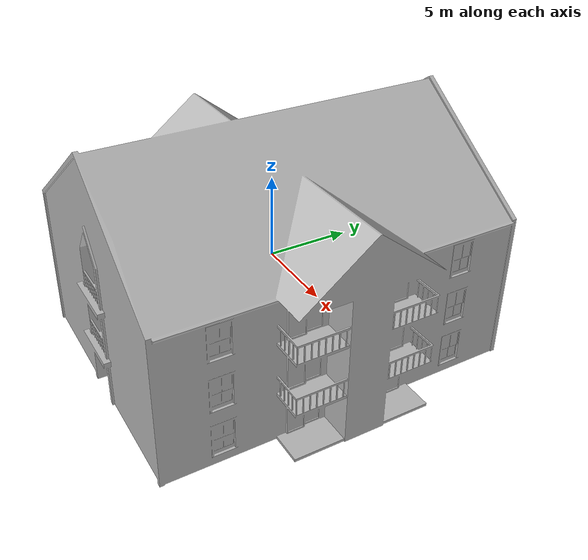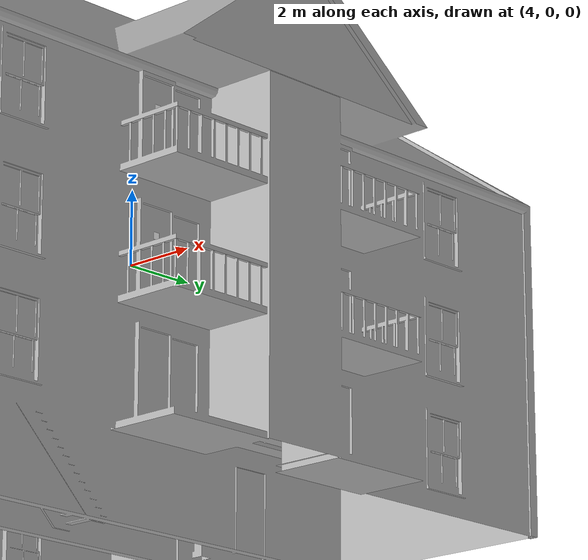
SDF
<?xml version='1.0'?>
<sdf version='1.6'>
  <model name='Apartment_with_arUco_Markers'>
    <model name='apartment'>
      <static>1</static>
      <link name='link'>
        <collision name='collision'>
          <geometry>
            <mesh>
              <uri>model://apartment/meshes/apartment.dae</uri>
            </mesh>
          </geometry>
        </collision>
        <visual name='visual'>
          <geometry>
            <mesh>
              <uri>model://apartment/meshes/apartment.dae</uri>
            </mesh>
          </geometry>
        </visual>
      </link>
      <pose frame=''>-0.000161 0.004856 -5.76608 0 -0 0</pose>
    </model>
    <model name='aruco_visual_marker_1'>
      <link name='marker'>
        <pose frame=''>0 0 0 0 -0 0</pose>
        <visual name='visual'>
          <geometry>
            <box>
              <size>0.1778 0.1778 1e-05</size>
            </box>
          </geometry>
          <material>
            <script>
              <uri>model://aruco_visual_marker_1/materials/scripts</uri>
              <uri>model://aruco_visual_marker_1/materials/textures</uri>
              <name>ArucoVisualMarker1/Marker</name>
            </script>
            <ambient>1 1 1 1</ambient>
            <diffuse>1 1 1 1</diffuse>
            <specular>0 0 0 1</specular>
            <emissive>1 1 1 0</emissive>
            <shader type='vertex'>
              <normal_map>__default__</normal_map>
            </shader>
          </material>
          <pose frame=''>0 0 0 0 -0 0</pose>
          <cast_shadows>1</cast_shadows>
          <transparency>0</transparency>
        </visual>
        <collision name='collision'>
          <laser_retro>0</laser_retro>
          <max_contacts>10</max_contacts>
          <pose frame=''>0 0 0 0 -0 0</pose>
          <geometry>
            <box>
              <size>0.1778 0.1778 1e-05</size>
            </box>
          </geometry>
        </collision>
      </link>
      <link name='marker_pad'>
        <pose frame='marker'>0 0 -1e-05 0 -0 0</pose>
        <visual name='visual'>
          <geometry>
            <box>
              <size>0.1778 0.1778 1e-05</size>
            </box>
          </geometry>
          <material>
            <lighting>1</lighting>
            <script>
              <uri>file://media/materials/scripts/gazebo.material</uri>
              <name>Gazebo/White</name>
            </script>
            <ambient>0.3 0.3 0.3 1</ambient>
            <diffuse>0.7 0.7 0.7 1</diffuse>
            <specular>0.01 0.01 0.01 1</specular>
            <emissive>1 1 1 0</emissive>
            <shader type='vertex'>
              <normal_map>__default__</normal_map>
            </shader>
          </material>
          <cast_shadows>1</cast_shadows>
          <transparency>0</transparency>
        </visual>
        <collision name='collision'>
          <laser_retro>0</laser_retro>
          <max_contacts>10</max_contacts>
          <pose frame=''>0 0 0 0 -0 0</pose>
          <geometry>
            <box>
              <size>0.1778 0.1778 1e-05</size>
            </box>
          </geometry>
        </collision>
      </link>
      <joint name='marker_JOINT_marker_pad' type='revolute'>
        <parent>marker</parent>
        <child>marker_pad</child>
        <pose frame=''>0 0 0 0 -0 0</pose>
        <axis>
          <xyz>0 0 1</xyz>
          <limit>
            <upper>0</upper>
            <lower>0</lower>
          </limit>
          <use_parent_model_frame>0</use_parent_model_frame>
        </axis>
      </joint>
      <static>1</static>
      <allow_auto_disable>1</allow_auto_disable>
      <pose frame=''>8.07857 -3.07571 -0.91059 2.69932 -1.56674 0.442279</pose>
    </model>
    <model name='aruco_visual_marker_2'>
      <link name='marker'>
        <pose frame=''>0 0 0 0 -0 0</pose>
        <visual name='visual'>
          <geometry>
            <box>
              <size>0.1778 0.1778 1e-05</size>
            </box>
          </geometry>
          <material>
            <script>
              <uri>model://aruco_visual_marker_2/materials/scripts</uri>
              <uri>model://aruco_visual_marker_2/materials/textures</uri>
              <name>ArucoVisualMarker2/Marker</name>
            </script>
            <ambient>1 1 1 1</ambient>
            <diffuse>1 1 1 1</diffuse>
            <specular>0 0 0 1</specular>
            <emissive>1 1 1 0</emissive>
            <shader type='vertex'>
              <normal_map>__default__</normal_map>
            </shader>
          </material>
          <pose frame=''>0 0 0 0 -0 0</pose>
          <cast_shadows>1</cast_shadows>
          <transparency>0</transparency>
        </visual>
        <collision name='collision'>
          <laser_retro>0</laser_retro>
          <max_contacts>10</max_contacts>
          <pose frame=''>0 0 0 0 -0 0</pose>
          <geometry>
            <box>
              <size>0.1778 0.1778 1e-05</size>
            </box>
          </geometry>
        </collision>
      </link>
      <link name='marker_pad'>
        <pose frame='marker'>0 0 -1e-05 0 -0 0</pose>
        <visual name='visual'>
          <geometry>
            <box>
              <size>0.1778 0.1778 1e-05</size>
            </box>
          </geometry>
          <material>
            <lighting>1</lighting>
            <script>
              <uri>file://media/materials/scripts/gazebo.material</uri>
              <name>Gazebo/White</name>
            </script>
            <ambient>0.3 0.3 0.3 1</ambient>
            <diffuse>0.7 0.7 0.7 1</diffuse>
            <specular>0.01 0.01 0.01 1</specular>
            <emissive>1 1 1 0</emissive>
            <shader type='vertex'>
              <normal_map>__default__</normal_map>
            </shader>
          </material>
          <cast_shadows>1</cast_shadows>
          <transparency>0</transparency>
        </visual>
        <collision name='collision'>
          <laser_retro>0</laser_retro>
          <max_contacts>10</max_contacts>
          <pose frame=''>0 0 0 0 -0 0</pose>
          <geometry>
            <box>
              <size>0.1778 0.1778 1e-05</size>
            </box>
          </geometry>
        </collision>
      </link>
      <joint name='marker_JOINT_marker_pad' type='revolute'>
        <parent>marker</parent>
        <child>marker_pad</child>
        <pose frame=''>0 0 0 0 -0 0</pose>
        <axis>
          <xyz>0 0 1</xyz>
          <limit>
            <upper>0</upper>
            <lower>0</lower>
          </limit>
          <use_parent_model_frame>0</use_parent_model_frame>
        </axis>
      </joint>
      <static>1</static>
      <allow_auto_disable>1</allow_auto_disable>
      <pose frame=''>-8.07695 3.097 -0.81146 3.14159 -1.56671 3.14159</pose>
    </model>
    <model name='aruco_visual_marker_3'>
      <link name='marker'>
        <pose frame=''>0 0 0 0 -0 0</pose>
        <visual name='visual'>
          <geometry>
            <box>
              <size>0.1778 0.1778 1e-05</size>
            </box>
          </geometry>
          <material>
            <script>
              <uri>model://aruco_visual_marker_3/materials/scripts</uri>
              <uri>model://aruco_visual_marker_3/materials/textures</uri>
              <name>ArucoVisualMarker3/Marker</name>
            </script>
            <ambient>1 1 1 1</ambient>
            <diffuse>1 1 1 1</diffuse>
            <specular>0 0 0 1</specular>
            <emissive>1 1 1 0</emissive>
            <shader type='vertex'>
              <normal_map>__default__</normal_map>
            </shader>
          </material>
          <pose frame=''>0 0 0 0 -0 0</pose>
          <cast_shadows>1</cast_shadows>
          <transparency>0</transparency>
        </visual>
        <collision name='collision'>
          <laser_retro>0</laser_retro>
          <max_contacts>10</max_contacts>
          <pose frame=''>0 0 0 0 -0 0</pose>
          <geometry>
            <box>
              <size>0.1778 0.1778 1e-05</size>
            </box>
          </geometry>
        </collision>
      </link>
      <link name='marker_pad'>
        <pose frame='marker'>0 0 -1e-05 0 -0 0</pose>
        <visual name='visual'>
          <geometry>
            <box>
              <size>0.1778 0.1778 1e-05</size>
            </box>
          </geometry>
          <material>
            <lighting>1</lighting>
            <script>
              <uri>file://media/materials/scripts/gazebo.material</uri>
              <name>Gazebo/White</name>
            </script>
            <ambient>0.3 0.3 0.3 1</ambient>
            <diffuse>0.7 0.7 0.7 1</diffuse>
            <specular>0.01 0.01 0.01 1</specular>
            <emissive>1 1 1 0</emissive>
            <shader type='vertex'>
              <normal_map>__default__</normal_map>
            </shader>
          </material>
          <cast_shadows>1</cast_shadows>
          <transparency>0</transparency>
        </visual>
        <collision name='collision'>
          <laser_retro>0</laser_retro>
          <max_contacts>10</max_contacts>
          <pose frame=''>0 0 0 0 -0 0</pose>
          <geometry>
            <box>
              <size>0.1778 0.1778 1e-05</size>
            </box>
          </geometry>
        </collision>
      </link>
      <joint name='marker_JOINT_marker_pad' type='revolute'>
        <parent>marker</parent>
        <child>marker_pad</child>
        <pose frame=''>0 0 0 0 -0 0</pose>
        <axis>
          <xyz>0 0 1</xyz>
          <limit>
            <upper>0</upper>
            <lower>0</lower>
          </limit>
          <use_parent_model_frame>0</use_parent_model_frame>
        </axis>
      </joint>
      <static>1</static>
      <allow_auto_disable>1</allow_auto_disable>
      <pose frame=''>8.07436 3.07706 -0.90925 -2.51482 -1.56668 -0.626778</pose>
    </model>
    <model name='aruco_visual_marker_4'>
      <link name='marker'>
        <pose frame=''>0 0 0 0 -0 0</pose>
        <visual name='visual'>
          <geometry>
            <box>
              <size>0.1778 0.1778 1e-05</size>
            </box>
          </geometry>
          <material>
            <script>
              <uri>model://aruco_visual_marker_4/materials/scripts</uri>
              <uri>model://aruco_visual_marker_4/materials/textures</uri>
              <name>ArucoVisualMarker4/Marker</name>
            </script>
            <ambient>1 1 1 1</ambient>
            <diffuse>1 1 1 1</diffuse>
            <specular>0 0 0 1</specular>
            <emissive>1 1 1 0</emissive>
            <shader type='vertex'>
              <normal_map>__default__</normal_map>
            </shader>
          </material>
          <pose frame=''>0 0 0 0 -0 0</pose>
          <cast_shadows>1</cast_shadows>
          <transparency>0</transparency>
        </visual>
        <collision name='collision'>
          <laser_retro>0</laser_retro>
          <max_contacts>10</max_contacts>
          <pose frame=''>0 0 0 0 -0 0</pose>
          <geometry>
            <box>
              <size>0.1778 0.1778 1e-05</size>
            </box>
          </geometry>
        </collision>
      </link>
      <link name='marker_pad'>
        <pose frame='marker'>0 0 -1e-05 0 -0 0</pose>
        <visual name='visual'>
          <geometry>
            <box>
              <size>0.1778 0.1778 1e-05</size>
            </box>
          </geometry>
          <material>
            <lighting>1</lighting>
            <script>
              <uri>file://media/materials/scripts/gazebo.material</uri>
              <name>Gazebo/White</name>
            </script>
            <ambient>0.3 0.3 0.3 1</ambient>
            <diffuse>0.7 0.7 0.7 1</diffuse>
            <specular>0.01 0.01 0.01 1</specular>
            <emissive>1 1 1 0</emissive>
            <shader type='vertex'>
              <normal_map>__default__</normal_map>
            </shader>
          </material>
          <cast_shadows>1</cast_shadows>
          <transparency>0</transparency>
        </visual>
        <collision name='collision'>
          <laser_retro>0</laser_retro>
          <max_contacts>10</max_contacts>
          <pose frame=''>0 0 0 0 -0 0</pose>
          <geometry>
            <box>
              <size>0.1778 0.1778 1e-05</size>
            </box>
          </geometry>
        </collision>
      </link>
      <joint name='marker_JOINT_marker_pad' type='revolute'>
        <parent>marker</parent>
        <child>marker_pad</child>
        <pose frame=''>0 0 0 0 -0 0</pose>
        <axis>
          <xyz>0 0 1</xyz>
          <limit>
            <upper>0</upper>
            <lower>0</lower>
          </limit>
          <use_parent_model_frame>0</use_parent_model_frame>
        </axis>
      </joint>
      <static>1</static>
      <allow_auto_disable>1</allow_auto_disable>
      <pose frame=''>-8.07466 -3.09746 -0.8294 3.2e-05 -1.56758 -3.8e-05</pose>
    </model>
    <model name='aruco_visual_marker_5'>
      <link name='marker'>
        <pose frame=''>0 0 0 0 -0 0</pose>
        <visual name='visual'>
          <geometry>
            <box>
              <size>0.1778 0.1778 1e-05</size>
            </box>
          </geometry>
          <material>
            <script>
              <uri>model://aruco_visual_marker_5/materials/scripts</uri>
              <uri>model://aruco_visual_marker_5/materials/textures</uri>
              <name>ArucoVisualMarker5/Marker</name>
            </script>
            <ambient>1 1 1 1</ambient>
            <diffuse>1 1 1 1</diffuse>
            <specular>0 0 0 1</specular>
            <emissive>1 1 1 0</emissive>
            <shader type='vertex'>
              <normal_map>__default__</normal_map>
            </shader>
          </material>
          <pose frame=''>0 0 0 0 -0 0</pose>
          <cast_shadows>1</cast_shadows>
          <transparency>0</transparency>
        </visual>
        <collision name='collision'>
          <laser_retro>0</laser_retro>
          <max_contacts>10</max_contacts>
          <pose frame=''>0 0 0 0 -0 0</pose>
          <geometry>
            <box>
              <size>0.1778 0.1778 1e-05</size>
            </box>
          </geometry>
        </collision>
      </link>
      <link name='marker_pad'>
        <pose frame='marker'>0 0 -1e-05 0 -0 0</pose>
        <visual name='visual'>
          <geometry>
            <box>
              <size>0.1778 0.1778 1e-05</size>
            </box>
          </geometry>
          <material>
            <lighting>1</lighting>
            <script>
              <uri>file://media/materials/scripts/gazebo.material</uri>
              <name>Gazebo/White</name>
            </script>
            <ambient>0.3 0.3 0.3 1</ambient>
            <diffuse>0.7 0.7 0.7 1</diffuse>
            <specular>0.01 0.01 0.01 1</specular>
            <emissive>1 1 1 0</emissive>
            <shader type='vertex'>
              <normal_map>__default__</normal_map>
            </shader>
          </material>
          <cast_shadows>1</cast_shadows>
          <transparency>0</transparency>
        </visual>
        <collision name='collision'>
          <laser_retro>0</laser_retro>
          <max_contacts>10</max_contacts>
          <pose frame=''>0 0 0 0 -0 0</pose>
          <geometry>
            <box>
              <size>0.1778 0.1778 1e-05</size>
            </box>
          </geometry>
        </collision>
      </link>
      <joint name='marker_JOINT_marker_pad' type='revolute'>
        <parent>marker</parent>
        <child>marker_pad</child>
        <pose frame=''>0 0 0 0 -0 0</pose>
        <axis>
          <xyz>0 0 1</xyz>
          <limit>
            <upper>0</upper>
            <lower>0</lower>
          </limit>
          <use_parent_model_frame>0</use_parent_model_frame>
        </axis>
      </joint>
      <static>1</static>
      <allow_auto_disable>1</allow_auto_disable>
      <pose frame=''>8.07509 -3.07904 2.26458 -2.96285 -1.56804 -0.178741</pose>
    </model>
    <model name='aruco_visual_marker_6'>
      <link name='marker'>
        <pose frame=''>0 0 0 0 -0 0</pose>
        <visual name='visual'>
          <geometry>
            <box>
              <size>0.1778 0.1778 1e-05</size>
            </box>
          </geometry>
          <material>
            <script>
              <uri>model://aruco_visual_marker_6/materials/scripts</uri>
              <uri>model://aruco_visual_marker_6/materials/textures</uri>
              <name>ArucoVisualMarker6/Marker</name>
            </script>
            <ambient>1 1 1 1</ambient>
            <diffuse>1 1 1 1</diffuse>
            <specular>0 0 0 1</specular>
            <emissive>1 1 1 0</emissive>
            <shader type='vertex'>
              <normal_map>__default__</normal_map>
            </shader>
          </material>
          <pose frame=''>0 0 0 0 -0 0</pose>
          <cast_shadows>1</cast_shadows>
          <transparency>0</transparency>
        </visual>
        <collision name='collision'>
          <laser_retro>0</laser_retro>
          <max_contacts>10</max_contacts>
          <pose frame=''>0 0 0 0 -0 0</pose>
          <geometry>
            <box>
              <size>0.1778 0.1778 1e-05</size>
            </box>
          </geometry>
        </collision>
      </link>
      <link name='marker_pad'>
        <pose frame='marker'>0 0 -1e-05 0 -0 0</pose>
        <visual name='visual'>
          <geometry>
            <box>
              <size>0.1778 0.1778 1e-05</size>
            </box>
          </geometry>
          <material>
            <lighting>1</lighting>
            <script>
              <uri>file://media/materials/scripts/gazebo.material</uri>
              <name>Gazebo/White</name>
            </script>
            <ambient>0.3 0.3 0.3 1</ambient>
            <diffuse>0.7 0.7 0.7 1</diffuse>
            <specular>0.01 0.01 0.01 1</specular>
            <emissive>1 1 1 0</emissive>
            <shader type='vertex'>
              <normal_map>__default__</normal_map>
            </shader>
          </material>
          <cast_shadows>1</cast_shadows>
          <transparency>0</transparency>
        </visual>
        <collision name='collision'>
          <laser_retro>0</laser_retro>
          <max_contacts>10</max_contacts>
          <pose frame=''>0 0 0 0 -0 0</pose>
          <geometry>
            <box>
              <size>0.1778 0.1778 1e-05</size>
            </box>
          </geometry>
        </collision>
      </link>
      <joint name='marker_JOINT_marker_pad' type='revolute'>
        <parent>marker</parent>
        <child>marker_pad</child>
        <pose frame=''>0 0 0 0 -0 0</pose>
        <axis>
          <xyz>0 0 1</xyz>
          <limit>
            <upper>0</upper>
            <lower>0</lower>
          </limit>
          <use_parent_model_frame>0</use_parent_model_frame>
        </axis>
      </joint>
      <static>1</static>
      <allow_auto_disable>1</allow_auto_disable>
      <pose frame=''>-8.0754 3.10027 2.33907 0 -1.56651 0</pose>
    </model>
    <model name='aruco_visual_marker_7'>
      <link name='marker'>
        <pose frame=''>0 0 0 0 -0 0</pose>
        <visual name='visual'>
          <geometry>
            <box>
              <size>0.1778 0.1778 1e-05</size>
            </box>
          </geometry>
          <material>
            <script>
              <uri>model://aruco_visual_marker_7/materials/scripts</uri>
              <uri>model://aruco_visual_marker_7/materials/textures</uri>
              <name>ArucoVisualMarker7/Marker</name>
            </script>
            <ambient>1 1 1 1</ambient>
            <diffuse>1 1 1 1</diffuse>
            <specular>0 0 0 1</specular>
            <emissive>1 1 1 0</emissive>
            <shader type='vertex'>
              <normal_map>__default__</normal_map>
            </shader>
          </material>
          <pose frame=''>0 0 0 0 -0 0</pose>
          <cast_shadows>1</cast_shadows>
          <transparency>0</transparency>
        </visual>
        <collision name='collision'>
          <laser_retro>0</laser_retro>
          <max_contacts>10</max_contacts>
          <pose frame=''>0 0 0 0 -0 0</pose>
          <geometry>
            <box>
              <size>0.1778 0.1778 1e-05</size>
            </box>
          </geometry>
        </collision>
      </link>
      <link name='marker_pad'>
        <pose frame='marker'>0 0 -1e-05 0 -0 0</pose>
        <visual name='visual'>
          <geometry>
            <box>
              <size>0.1778 0.1778 1e-05</size>
            </box>
          </geometry>
          <material>
            <lighting>1</lighting>
            <script>
              <uri>file://media/materials/scripts/gazebo.material</uri>
              <name>Gazebo/White</name>
            </script>
            <ambient>0.3 0.3 0.3 1</ambient>
            <diffuse>0.7 0.7 0.7 1</diffuse>
            <specular>0.01 0.01 0.01 1</specular>
            <emissive>1 1 1 0</emissive>
            <shader type='vertex'>
              <normal_map>__default__</normal_map>
            </shader>
          </material>
          <cast_shadows>1</cast_shadows>
          <transparency>0</transparency>
        </visual>
        <collision name='collision'>
          <laser_retro>0</laser_retro>
          <max_contacts>10</max_contacts>
          <pose frame=''>0 0 0 0 -0 0</pose>
          <geometry>
            <box>
              <size>0.1778 0.1778 1e-05</size>
            </box>
          </geometry>
        </collision>
      </link>
      <joint name='marker_JOINT_marker_pad' type='revolute'>
        <parent>marker</parent>
        <child>marker_pad</child>
        <pose frame=''>0 0 0 0 -0 0</pose>
        <axis>
          <xyz>0 0 1</xyz>
          <limit>
            <upper>0</upper>
            <lower>0</lower>
          </limit>
          <use_parent_model_frame>0</use_parent_model_frame>
        </axis>
      </joint>
      <static>1</static>
      <allow_auto_disable>1</allow_auto_disable>
      <pose frame=''>8.0761 3.075 2.2534 0.43981 -1.56781 2.70179</pose>
    </model>
    <model name='aruco_visual_marker_8'>
      <link name='marker'>
        <pose frame=''>0 0 0 0 -0 0</pose>
        <visual name='visual'>
          <geometry>
            <box>
              <size>0.1778 0.1778 1e-05</size>
            </box>
          </geometry>
          <material>
            <script>
              <uri>model://aruco_visual_marker_8/materials/scripts</uri>
              <uri>model://aruco_visual_marker_8/materials/textures</uri>
              <name>ArucoVisualMarker8/Marker</name>
            </script>
            <ambient>1 1 1 1</ambient>
            <diffuse>1 1 1 1</diffuse>
            <specular>0 0 0 1</specular>
            <emissive>1 1 1 0</emissive>
            <shader type='vertex'>
              <normal_map>__default__</normal_map>
            </shader>
          </material>
          <pose frame=''>0 0 0 0 -0 0</pose>
          <cast_shadows>1</cast_shadows>
          <transparency>0</transparency>
        </visual>
        <collision name='collision'>
          <laser_retro>0</laser_retro>
          <max_contacts>10</max_contacts>
          <pose frame=''>0 0 0 0 -0 0</pose>
          <geometry>
            <box>
              <size>0.1778 0.1778 1e-05</size>
            </box>
          </geometry>
        </collision>
      </link>
      <link name='marker_pad'>
        <pose frame='marker'>0 0 -1e-05 0 -0 0</pose>
        <visual name='visual'>
          <geometry>
            <box>
              <size>0.1778 0.1778 1e-05</size>
            </box>
          </geometry>
          <material>
            <lighting>1</lighting>
            <script>
              <uri>file://media/materials/scripts/gazebo.material</uri>
              <name>Gazebo/White</name>
            </script>
            <ambient>0.3 0.3 0.3 1</ambient>
            <diffuse>0.7 0.7 0.7 1</diffuse>
            <specular>0.01 0.01 0.01 1</specular>
            <emissive>1 1 1 0</emissive>
            <shader type='vertex'>
              <normal_map>__default__</normal_map>
            </shader>
          </material>
          <cast_shadows>1</cast_shadows>
          <transparency>0</transparency>
        </visual>
        <collision name='collision'>
          <laser_retro>0</laser_retro>
          <max_contacts>10</max_contacts>
          <pose frame=''>0 0 0 0 -0 0</pose>
          <geometry>
            <box>
              <size>0.1778 0.1778 1e-05</size>
            </box>
          </geometry>
        </collision>
      </link>
      <joint name='marker_JOINT_marker_pad' type='revolute'>
        <parent>marker</parent>
        <child>marker_pad</child>
        <pose frame=''>0 0 0 0 -0 0</pose>
        <axis>
          <xyz>0 0 1</xyz>
          <limit>
            <upper>0</upper>
            <lower>0</lower>
          </limit>
          <use_parent_model_frame>0</use_parent_model_frame>
        </axis>
      </joint>
      <static>1</static>
      <allow_auto_disable>1</allow_auto_disable>
      <pose frame=''>-8.07692 -3.10195 2.36973 3.14159 -1.56657 3.14159</pose>
    </model>
    <joint name='link_JOINT_0' type='revolute'>
      <parent>apartment::link</parent>
      <child>aruco_visual_marker_1::marker</child>
      <pose frame=''>0 0 0 0 -0 0</pose>
      <axis>
        <xyz>1 0 0</xyz>
        <use_parent_model_frame>0</use_parent_model_frame>
        <limit>
          <lower>-1.79769e+308</lower>
          <upper>1.79769e+308</upper>
          <effort>-1</effort>
          <velocity>-1</velocity>
        </limit>
        <dynamics>
          <spring_reference>0</spring_reference>
          <spring_stiffness>0</spring_stiffness>
          <damping>0</damping>
        </dynamics>
      </axis>
      <physics>
        <ode>
          <limit>
            <cfm>0</cfm>
            <erp>0.2</erp>
          </limit>
          <suspension>
            <cfm>0</cfm>
            <erp>0.2</erp>
          </suspension>
        </ode>
      </physics>
    </joint>
    <joint name='link_JOINT_1' type='revolute'>
      <parent>apartment::link</parent>
      <child>aruco_visual_marker_3::marker</child>
      <pose frame=''>0 0 0 0 -0 0</pose>
      <axis>
        <xyz>1 0 0</xyz>
        <use_parent_model_frame>0</use_parent_model_frame>
        <limit>
          <lower>-1.79769e+308</lower>
          <upper>1.79769e+308</upper>
          <effort>-1</effort>
          <velocity>-1</velocity>
        </limit>
        <dynamics>
          <spring_reference>0</spring_reference>
          <spring_stiffness>0</spring_stiffness>
          <damping>0</damping>
        </dynamics>
      </axis>
      <physics>
        <ode>
          <limit>
            <cfm>0</cfm>
            <erp>0.2</erp>
          </limit>
          <suspension>
            <cfm>0</cfm>
            <erp>0.2</erp>
          </suspension>
        </ode>
      </physics>
    </joint>
    <joint name='link_JOINT_2' type='revolute'>
      <parent>apartment::link</parent>
      <child>aruco_visual_marker_5::marker_pad</child>
      <pose frame=''>0 0 0 0 -0 0</pose>
      <axis>
        <xyz>1 0 0</xyz>
        <use_parent_model_frame>0</use_parent_model_frame>
        <limit>
          <lower>-1.79769e+308</lower>
          <upper>1.79769e+308</upper>
          <effort>-1</effort>
          <velocity>-1</velocity>
        </limit>
        <dynamics>
          <spring_reference>0</spring_reference>
          <spring_stiffness>0</spring_stiffness>
          <damping>0</damping>
        </dynamics>
      </axis>
      <physics>
        <ode>
          <limit>
            <cfm>0</cfm>
            <erp>0.2</erp>
          </limit>
          <suspension>
            <cfm>0</cfm>
            <erp>0.2</erp>
          </suspension>
        </ode>
      </physics>
    </joint>
    <joint name='link_JOINT_3' type='revolute'>
      <parent>apartment::link</parent>
      <child>aruco_visual_marker_7::marker</child>
      <pose frame=''>0 0 0 0 -0 0</pose>
      <axis>
        <xyz>1 0 0</xyz>
        <use_parent_model_frame>0</use_parent_model_frame>
        <limit>
          <lower>-1.79769e+308</lower>
          <upper>1.79769e+308</upper>
          <effort>-1</effort>
          <velocity>-1</velocity>
        </limit>
        <dynamics>
          <spring_reference>0</spring_reference>
          <spring_stiffness>0</spring_stiffness>
          <damping>0</damping>
        </dynamics>
      </axis>
      <physics>
        <ode>
          <limit>
            <cfm>0</cfm>
            <erp>0.2</erp>
          </limit>
          <suspension>
            <cfm>0</cfm>
            <erp>0.2</erp>
          </suspension>
        </ode>
      </physics>
    </joint>
    <joint name='link_JOINT_4' type='revolute'>
      <parent>apartment::link</parent>
      <child>aruco_visual_marker_2::marker</child>
      <pose frame=''>0 0 0 0 -0 0</pose>
      <axis>
        <xyz>1 0 0</xyz>
        <use_parent_model_frame>0</use_parent_model_frame>
        <limit>
          <lower>-1.79769e+308</lower>
          <upper>1.79769e+308</upper>
          <effort>-1</effort>
          <velocity>-1</velocity>
        </limit>
        <dynamics>
          <spring_reference>0</spring_reference>
          <spring_stiffness>0</spring_stiffness>
          <damping>0</damping>
        </dynamics>
      </axis>
      <physics>
        <ode>
          <limit>
            <cfm>0</cfm>
            <erp>0.2</erp>
          </limit>
          <suspension>
            <cfm>0</cfm>
            <erp>0.2</erp>
          </suspension>
        </ode>
      </physics>
    </joint>
    <joint name='link_JOINT_5' type='revolute'>
      <parent>apartment::link</parent>
      <child>aruco_visual_marker_4::marker_pad</child>
      <pose frame=''>0 0 0 0 -0 0</pose>
      <axis>
        <xyz>1 0 0</xyz>
        <use_parent_model_frame>0</use_parent_model_frame>
        <limit>
          <lower>-1.79769e+308</lower>
          <upper>1.79769e+308</upper>
          <effort>-1</effort>
          <velocity>-1</velocity>
        </limit>
        <dynamics>
          <spring_reference>0</spring_reference>
          <spring_stiffness>0</spring_stiffness>
          <damping>0</damping>
        </dynamics>
      </axis>
      <physics>
        <ode>
          <limit>
            <cfm>0</cfm>
            <erp>0.2</erp>
          </limit>
          <suspension>
            <cfm>0</cfm>
            <erp>0.2</erp>
          </suspension>
        </ode>
      </physics>
    </joint>
    <joint name='link_JOINT_6' type='revolute'>
      <parent>apartment::link</parent>
      <child>aruco_visual_marker_6::marker</child>
      <pose frame=''>0 0 0 0 -0 0</pose>
      <axis>
        <xyz>1 0 0</xyz>
        <use_parent_model_frame>0</use_parent_model_frame>
        <limit>
          <lower>-1.79769e+308</lower>
          <upper>1.79769e+308</upper>
          <effort>-1</effort>
          <velocity>-1</velocity>
        </limit>
        <dynamics>
          <spring_reference>0</spring_reference>
          <spring_stiffness>0</spring_stiffness>
          <damping>0</damping>
        </dynamics>
      </axis>
      <physics>
        <ode>
          <limit>
            <cfm>0</cfm>
            <erp>0.2</erp>
          </limit>
          <suspension>
            <cfm>0</cfm>
            <erp>0.2</erp>
          </suspension>
        </ode>
      </physics>
    </joint>
    <joint name='link_JOINT_7' type='revolute'>
      <parent>apartment::link</parent>
      <child>aruco_visual_marker_8::marker</child>
      <pose frame=''>0 0 0 0 -0 0</pose>
      <axis>
        <xyz>1 0 0</xyz>
        <use_parent_model_frame>0</use_parent_model_frame>
        <limit>
          <lower>-1.79769e+308</lower>
          <upper>1.79769e+308</upper>
          <effort>-1</effort>
          <velocity>-1</velocity>
        </limit>
        <dynamics>
          <spring_reference>0</spring_reference>
          <spring_stiffness>0</spring_stiffness>
          <damping>0</damping>
        </dynamics>
      </axis>
      <physics>
        <ode>
          <limit>
            <cfm>0</cfm>
            <erp>0.2</erp>
          </limit>
          <suspension>
            <cfm>0</cfm>
            <erp>0.2</erp>
          </suspension>
        </ode>
      </physics>
    </joint>
    <static>0</static>
    <allow_auto_disable>1</allow_auto_disable>
  </model>
</sdf>
